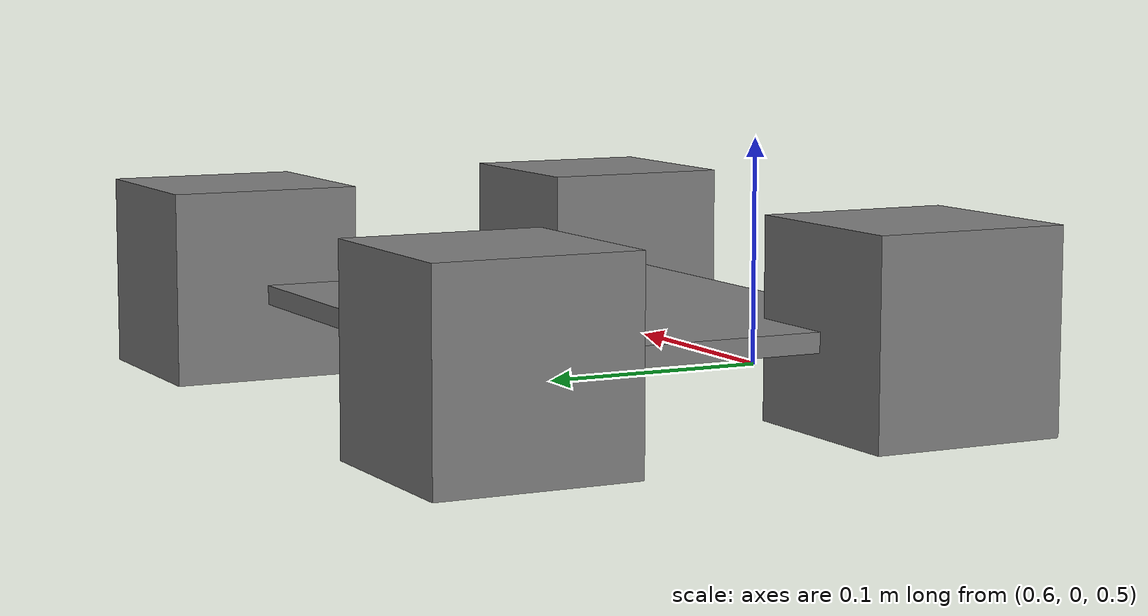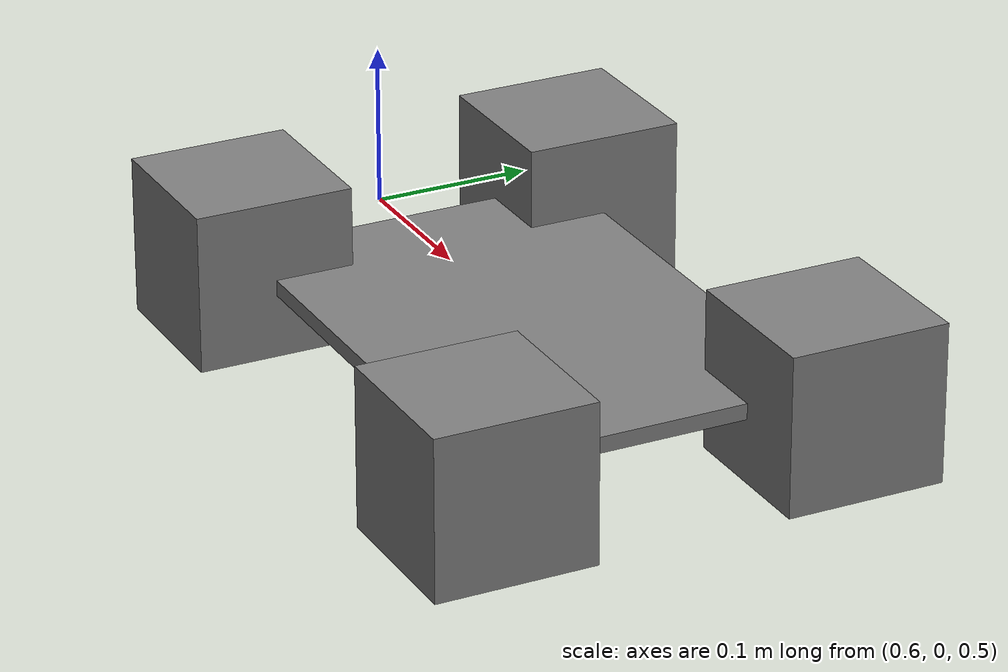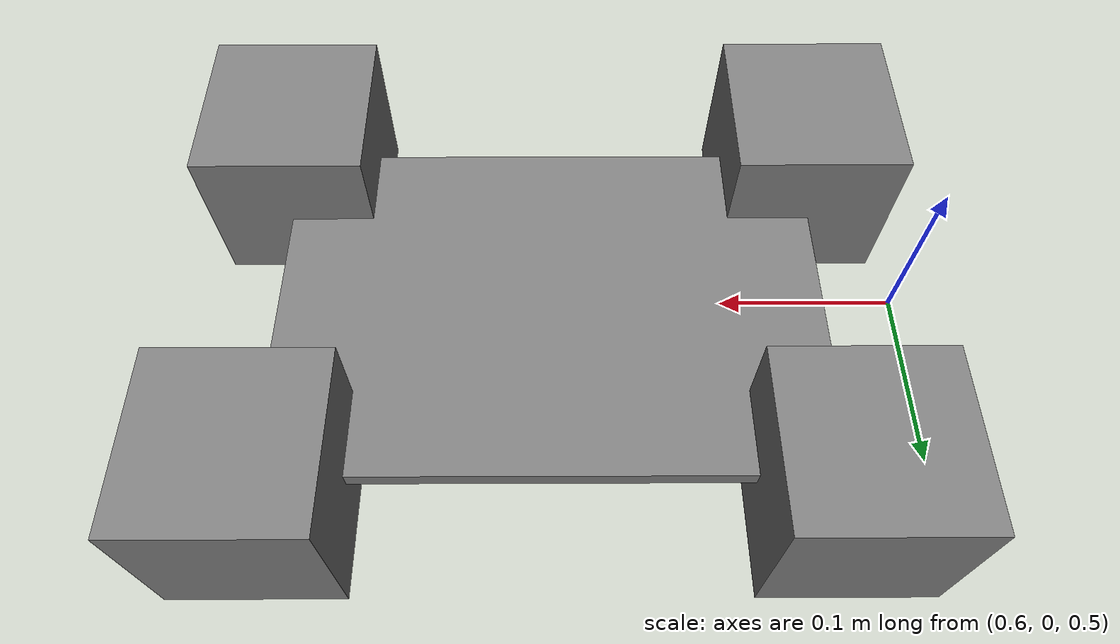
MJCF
<mujoco>

  <worldbody>
      <body name="tray" pos="0.8 0. 0.50">
          <joint type="free" />
          <geom name="tray_base" type="box" pos="0 0. 0." size="0.16 0.11 0.005"/>
          <body name="tray_corner">
            <geom name="rack_base_front" type="box" pos="0.16 0.11 0.005" size="0.05 0.05 0.05"/>
            <geom name="rack_base_rear" type="box" pos="0.16 -0.11 0.005" size="0.05 0.05 0.05"/>
            <geom name="rack_base_right" type="box" pos="-0.16 0.11 0.005" size="0.05 0.05 0.05"/>
            <geom name="rack_base_left" type="box" pos="-0.16 -0.11 0.005" size="0.05 0.05 0.05"/>
          </body>
      </body>
  </worldbody>
</mujoco>
